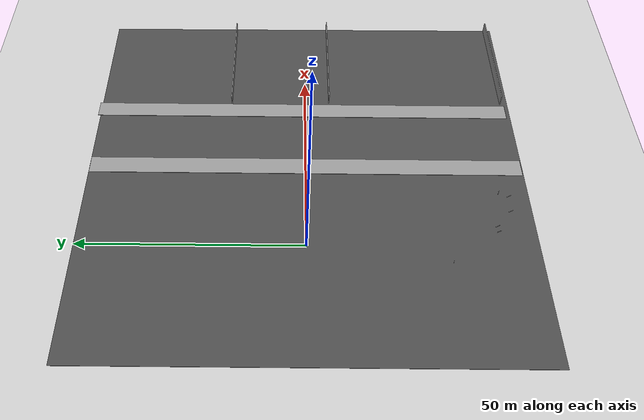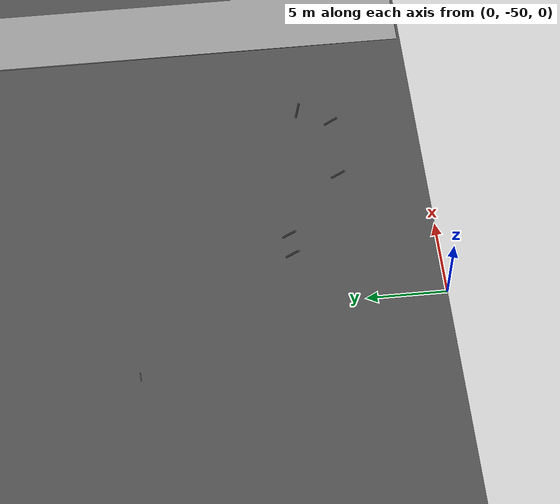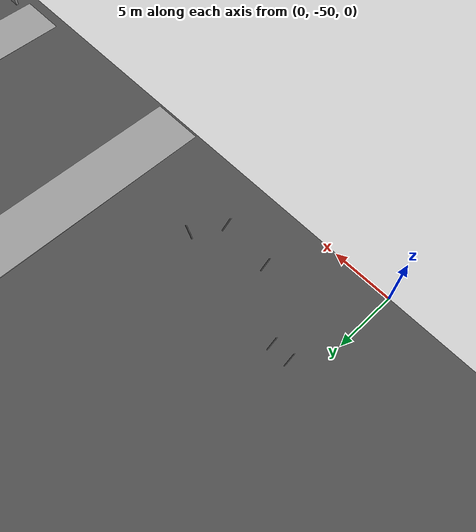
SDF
<sdf version="1.6">
 <world name="default">
  <physics name="default_physics" default="0" type="ode">
   <ode>
    <solver>
     <type>quick</type>
     <iters>100</iters>
     <sor>1</sor>
     <use_dynamic_moi_rescaling>0</use_dynamic_moi_rescaling>
    </solver>
    <constraints>
     <cfm>0</cfm>
     <erp>0.2</erp>
     <contact_max_correcting_vel>0.1</contact_max_correcting_vel>
     <contact_surface_layer>0</contact_surface_layer>
    </constraints>
   </ode>
   <real_time_update_rate>-1</real_time_update_rate>
   <max_step_size>0.001</max_step_size>
   <real_time_factor>1</real_time_factor>
  </physics>
  <gravity>0 0 -9.8</gravity>
  <light name="sun" type="directional">
   <pose>0 0 10 0 -0 0</pose>
   <diffuse>0.8 0.8 0.8 1</diffuse>
   <specular>0.2 0.2 0.2 1</specular>
   <attenuation>
    <range>1000</range>
    <constant>0.9</constant>
    <linear>0.01</linear>
    <quadratic>0.001</quadratic>
   </attenuation>
   <direction>-0.5 0.1 -0.9</direction>
  </light>
  <magnetic_field>6e-06 2.3e-05 -4.2e-05</magnetic_field>
  <atmosphere type="adiabatic"/>
  <scene><ambient>0.4 0.4 0.4 1</ambient><background>0.7 0.7 0.7 1</background><shadows>1</shadows></scene>
  <audio><device>default</device></audio>
  <spherical_coordinates>
   <surface_model>EARTH_WGS84</surface_model>
   <latitude_deg>0</latitude_deg>
   <longitude_deg>0</longitude_deg>
   <elevation>0</elevation>
   <heading_deg>0</heading_deg>
  </spherical_coordinates>
  <model name="asphalt_plane">
   <static>1</static>
   <link name="link">
    <collision name="collision"><geometry><box><size>100 100 0.1</size></box></geometry></collision>
    <visual name="visual">
     <cast_shadows>0</cast_shadows>
     <geometry><box><size>100 100 0.1</size></box></geometry>
     <material>
      <script>
       <uri>model://asphalt_plane/materials/scripts</uri>
       <uri>model://asphalt_plane/materials/textures</uri>
       <name>vrc/asphalt</name>
      </script>
     </material>
    </visual>
   </link>
   <pose>21.3799 0 0 0 -0 0</pose>
  </model>
  <model name="unit_box_clone">
   <static>1</static>
   <pose>22.3932 -0.000186 0.199649 0.003848 0.00014 -7.4e-05</pose>
   <link name="unit_box_clone::unit_box_clone::unit_box::link">
    <inertial>
     <mass>1</mass>
     <inertia>
      <ixx>0.166667</ixx>
      <ixy>0</ixy>
      <ixz>0</ixz>
      <iyy>0.166667</iyy>
      <iyz>0</iyz>
      <izz>0.166667</izz>
     </inertia>
    </inertial>
    <collision name="collision"><geometry><box><size>4.50768 99.6629 0.087298</size></box></geometry></collision>
    <visual name="visual">
     <geometry><box><size>4.50768 99.6629 0.087298</size></box></geometry>
     <material>
      <script><name>Gazebo/Grey</name><uri>file://media/materials/scripts/gazebo.material</uri></script>
     </material>
    </visual>
   </link>
  </model>
  <model name="ground_plane">
   <static>1</static>
   <link name="link">
    <collision name="collision">
     <geometry><plane><normal>0 0 1</normal><size>100 100</size></plane></geometry>
     <surface>
      <contact><collide_bitmask>65535</collide_bitmask></contact>
      <friction><ode><mu>100</mu><mu2>50</mu2></ode></friction>
     </surface>
    </collision>
    <visual name="visual">
     <cast_shadows>0</cast_shadows>
     <geometry><plane><normal>0 0 1</normal><size>100 100</size></plane></geometry>
     <material>
      <script><uri>file://media/materials/scripts/gazebo.material</uri><name>Gazebo/Grey</name></script>
     </material>
    </visual>
   </link>
  </model>
  <model name="unit_box">
   <static>1</static>
   <pose>0.882739 -40.5086 4.36011 0.898249 -0 0</pose>
   <link name="link">
    <inertial>
     <mass>1</mass>
     <inertia>
      <ixx>0.166667</ixx>
      <ixy>0</ixy>
      <ixz>0</ixz>
      <iyy>0.166667</iyy>
      <iyz>0</iyz>
      <izz>0.166667</izz>
     </inertia>
    </inertial>
    <collision name="collision"><geometry><box><size>0.055659 0.10372 1</size></box></geometry></collision>
    <visual name="visual">
     <geometry><box><size>0.055659 0.10372 1</size></box></geometry>
     <material>
      <script><name>Gazebo/Black</name><uri>file://media/materials/scripts/gazebo.material</uri></script>
     </material>
    </visual>
   </link>
  </model>
  <model name="unit_box_clone_clone_1">
   <static>1</static>
   <pose>40.4977 0.681603 0.199283 0.003848 0.00014 -7.4e-05</pose>
   <link name="unit_box_clone::unit_box_clone::unit_box::link">
    <inertial>
     <mass>1</mass>
     <inertia>
      <ixx>0.166667</ixx>
      <ixy>0</ixy>
      <ixz>0</ixz>
      <iyy>0.166667</iyy>
      <iyz>0</iyz>
      <izz>0.166667</izz>
     </inertia>
    </inertial>
    <collision name="collision"><geometry><box><size>4.23117 99.6629 0.087298</size></box></geometry></collision>
    <visual name="visual">
     <geometry><box><size>4.23117 99.6629 0.087298</size></box></geometry>
     <material>
      <script><name>Gazebo/Grey</name><uri>file://media/materials/scripts/gazebo.material</uri></script>
     </material>
    </visual>
   </link>
  </model>
  <model name="grey_wall">
   <static>1</static>
   <link name="link">
    <pose>0 0 1.4 0 -0 0</pose>
    <collision name="collision"><geometry><box><size>28 0.2 2.8</size></box></geometry></collision>
    <visual name="visual">
     <cast_shadows>0</cast_shadows>
     <geometry><box><size>28 0.2 2.8</size></box></geometry>
     <material>
      <script>
       <uri>model://grey_wall/materials/scripts</uri>
       <uri>model://grey_wall/materials/textures</uri>
       <name>vrc/grey_wall</name>
      </script>
     </material>
    </visual>
   </link>
   <pose>57.3307 -5.90756 0 0 -0 0</pose>
  </model>
  <model name="grey_wall_clone">
   <static>1</static>
   <link name="link">
    <pose>0 0 1.4 0 -0 0</pose>
    <collision name="collision"><geometry><box><size>28 0.2 2.8</size></box></geometry></collision>
    <visual name="visual">
     <cast_shadows>0</cast_shadows>
     <geometry><box><size>28 0.2 2.8</size></box></geometry>
     <material>
      <script>
       <uri>model://grey_wall/materials/scripts</uri>
       <uri>model://grey_wall/materials/textures</uri>
       <name>vrc/grey_wall</name>
      </script>
     </material>
    </visual>
   </link>
   <pose>57.2466 -48.2459 0 0 -0 0</pose>
  </model>
  <model name="grey_wall_clone_0">
   <static>1</static>
   <link name="link">
    <pose>0 0 1.4 0 -0 0</pose>
    <collision name="collision"><geometry><box><size>28 0.2 2.8</size></box></geometry></collision>
    <visual name="visual">
     <cast_shadows>0</cast_shadows>
     <geometry><box><size>28 0.2 2.8</size></box></geometry>
     <material>
      <script>
       <uri>model://grey_wall/materials/scripts</uri>
       <uri>model://grey_wall/materials/textures</uri>
       <name>vrc/grey_wall</name>
      </script>
     </material>
    </visual>
   </link>
   <pose>56.6975 18.0092 0 0 -0 0</pose>
  </model>
  <model name="unit_box_0">
   <pose>-4.33725 -30.9259 0.550001 -5.3e-05 1e-06 -7.6e-05</pose>
   <link name="link">
    <inertial>
     <mass>1</mass>
     <inertia>
      <ixx>0.166667</ixx>
      <ixy>0</ixy>
      <ixz>0</ixz>
      <iyy>0.166667</iyy>
      <iyz>0</iyz>
      <izz>0.166667</izz>
     </inertia>
    </inertial>
    <collision name="collision"><geometry><box><size>0.028448 0.052068 1</size></box></geometry></collision>
    <visual name="visual">
     <geometry><box><size>0.028448 0.052068 1</size></box></geometry>
     <material>
      <script><name>Gazebo/Grey</name><uri>file://media/materials/scripts/gazebo.material</uri></script>
     </material>
    </visual>
   </link>
  </model>
  <model name="unit_box_clone_0">
   <static>1</static>
   <pose>6.33875 -43.9117 4.36011 0.898249 -0 0</pose>
   <link name="link">
    <inertial>
     <mass>1</mass>
     <inertia>
      <ixx>0.166667</ixx>
      <ixy>0</ixy>
      <ixz>0</ixz>
      <iyy>0.166667</iyy>
      <iyz>0</iyz>
      <izz>0.166667</izz>
     </inertia>
    </inertial>
    <collision name="collision"><geometry><box><size>0.055659 0.10372 1</size></box></geometry></collision>
    <visual name="visual">
     <geometry><box><size>0.055659 0.10372 1</size></box></geometry>
     <material>
      <script><name>Gazebo/Black</name><uri>file://media/materials/scripts/gazebo.material</uri></script>
     </material>
    </visual>
   </link>
  </model>
  <model name="unit_box_clone_1">
   <static>1</static>
   <pose>9.86781 -43.88 5.08694 0.898249 -0 0</pose>
   <link name="link">
    <inertial>
     <mass>1</mass>
     <inertia>
      <ixx>0.166667</ixx>
      <ixy>0</ixy>
      <ixz>0</ixz>
      <iyy>0.166667</iyy>
      <iyz>0</iyz>
      <izz>0.166667</izz>
     </inertia>
    </inertial>
    <collision name="collision"><geometry><box><size>0.055659 0.10372 1</size></box></geometry></collision>
    <visual name="visual">
     <geometry><box><size>0.055659 0.10372 1</size></box></geometry>
     <material>
      <script><name>Gazebo/Black</name><uri>file://media/materials/scripts/gazebo.material</uri></script>
     </material>
    </visual>
   </link>
  </model>
  <model name="unit_box_clone_2">
   <static>1</static>
   <pose>11.4819 -42.015 4.36011 1.27184 0.611922 1.07836</pose>
   <link name="link">
    <inertial>
     <mass>1</mass>
     <inertia>
      <ixx>0.166667</ixx>
      <ixy>0</ixy>
      <ixz>0</ixz>
      <iyy>0.166667</iyy>
      <iyz>0</iyz>
      <izz>0.166667</izz>
     </inertia>
    </inertial>
    <collision name="collision"><geometry><box><size>0.055659 0.10372 1</size></box></geometry></collision>
    <visual name="visual">
     <geometry><box><size>0.055659 0.10372 1</size></box></geometry>
     <material>
      <script><name>Gazebo/Black</name><uri>file://media/materials/scripts/gazebo.material</uri></script>
     </material>
    </visual>
   </link>
  </model>
  <model name="unit_box_clone_3">
   <static>1</static>
   <pose>2.29314 -40.464 4.36011 0.898249 -0 0</pose>
   <link name="link">
    <inertial>
     <mass>1</mass>
     <inertia>
      <ixx>0.166667</ixx>
      <ixy>0</ixy>
      <ixz>0</ixz>
      <iyy>0.166667</iyy>
      <iyz>0</iyz>
      <izz>0.166667</izz>
     </inertia>
    </inertial>
    <collision name="collision"><geometry><box><size>0.055659 0.10372 1</size></box></geometry></collision>
    <visual name="visual">
     <geometry><box><size>0.055659 0.10372 1</size></box></geometry>
     <material>
      <script><name>Gazebo/Black</name><uri>file://media/materials/scripts/gazebo.material</uri></script>
     </material>
    </visual>
   </link>
  </model>
 </world>
</sdf>
